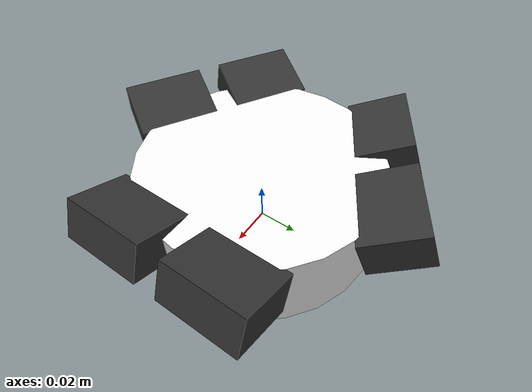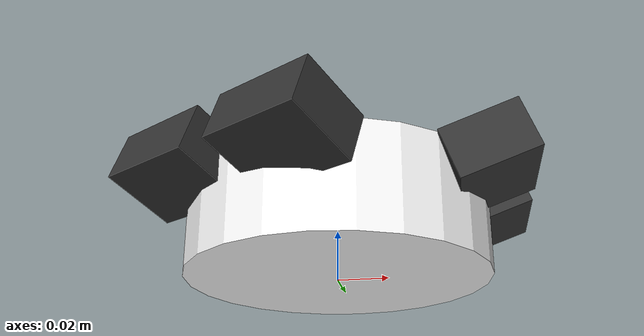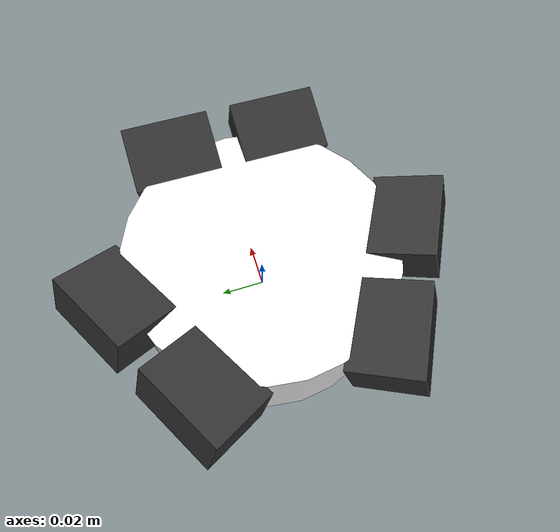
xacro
<?xml version="1.0"?>

<robot xmlns:xacro="http://www.ros.org/wiki/xacro" >

    <xacro:property name="servo_height" value="0.043"/>
    <xacro:property name="draft_angle" value="-0.349066"/>

    <xacro:property name="_120_degrees" value="2.0944"/>
    <xacro:property name="_240_degrees" value="4.18879"/>
    <xacro:property name="_180_degrees" value="3.14159"/>

    <xacro:property name="servo1_x" value="-0.07159"/>
    <xacro:property name="servo1_y" value="0.05282"/>
    <xacro:property name="servo2_x" value="-0.00967"/>
    <xacro:property name="servo2_y" value="0.08825"/>
    <xacro:property name="servo3_x" value="0.08126"/>
    <xacro:property name="servo3_y" value="0.03575"/>
    <xacro:property name="servo4_x" value="0.08126"/>
    <xacro:property name="servo4_y" value="-0.03567"/>
    <xacro:property name="servo5_x" value="-0.00967"/>
    <xacro:property name="servo5_y" value="-0.08825"/>
    <xacro:property name="servo6_x" value="-0.07159"/>
    <xacro:property name="servo6_y" value="-0.0525"/>

    <material name="white">
        <color rgba="0.95 0.95 0.95 1"/>
    </material>

    <material name="black">
        <color rgba="0.2 0.2 0.2 1"/>
    </material>

    <link name="base_link">
        <visual>
            <material name="white"/>
            <geometry>
                <cylinder length = "0.04" radius = "0.06"/>
            </geometry>
            <origin xyz="0 0 0.02" rpy="0 0 -0.523"/>
        </visual>

        <collision>
            <geometry>
                <cylinder length = "0.04" radius = "0.06"/>
            </geometry>
            <origin xyz="0 0 0.02"/>
        </collision>

        <inertial>
            <origin xyz="0 0 1" rpy="0 0 0"/>
            <mass value="0.15"/>
            <inertia
                ixx="0.00024" ixy="0.0" ixz="0.0"
                iyy="0.00025" iyz="0.0"
                izz="0.00041"/>
        </inertial>

    </link>

    <xacro:macro name="servo_link" params="link_name">
        <link name="${link_name}">
            <visual>
                <material name="black"/>
                <geometry>
                    <box size="0.030 0.040 0.020"/>
                </geometry>
                <origin xyz="-0.023 -0.010 0"/>
            </visual>

            <collision>
                <geometry>
                    <box size="0.030 0.040 0.020"/>
                </geometry>
                <origin xyz="-0.023 -0.010 0"/>
            </collision>

            <inertial>
                <origin xyz="-0.023 -0.010 0"/>
                <mass value="0.060"/>
                <inertia
                    ixx="0.00001" ixy="0.0" ixz="0.0"
                    iyy="0.0000065" iyz="0.0"
                    izz="0.0000125"/>
            </inertial>
        </link>
    </xacro:macro>

    <joint name="servo1_joint" type="fixed">
        <parent link="base_link"/>
        <child link="servo1_link"/>
        <origin xyz="${servo1_x} ${servo1_y} ${servo_height}" rpy="0 ${draft_angle} ${_120_degrees}"/>
    </joint>

    <xacro:servo_link link_name="servo1_link"/>

    <joint name="servo2_joint" type="fixed">
        <parent link="base_link"/>
        <child link="servo2_link"/>
        <origin xyz="${servo2_x} ${servo2_y} ${servo_height}" rpy="${_180_degrees} ${draft_angle} ${_120_degrees}"/>
    </joint>

    <xacro:servo_link link_name="servo2_link"/>

    <joint name="servo3_joint" type="fixed">
        <parent link="base_link"/>
        <child link="servo3_link"/>
        <origin xyz="${servo3_x} ${servo3_y} ${servo_height}" rpy="0 ${draft_angle} 0"/>
    </joint>

    <xacro:servo_link link_name="servo3_link"/>

    <joint name="servo4_joint" type="fixed">
        <parent link="base_link"/>
        <child link="servo4_link"/>
        <origin xyz="${servo4_x} ${servo4_y} ${servo_height}" rpy="${_180_degrees} ${draft_angle} 0"/>
    </joint>

    <xacro:servo_link link_name="servo4_link"/>

    <joint name="servo5_joint" type="fixed">
        <parent link="base_link"/>
        <child link="servo5_link"/>
        <origin xyz="${servo5_x} ${servo5_y} ${servo_height}" rpy="0 ${draft_angle} ${_240_degrees}"/>
    </joint>

    <xacro:servo_link link_name="servo5_link"/>

    <joint name="servo6_joint" type="fixed">
        <parent link="base_link"/>
        <child link="servo6_link"/>
        <origin xyz="${servo6_x} ${servo6_y} ${servo_height}" rpy="${_180_degrees} ${draft_angle} ${_240_degrees}"/>
    </joint>

    <xacro:servo_link link_name="servo6_link"/>

</robot>
